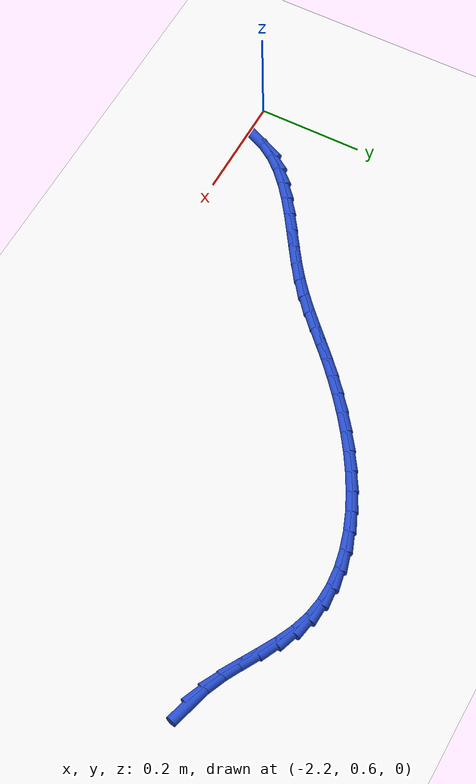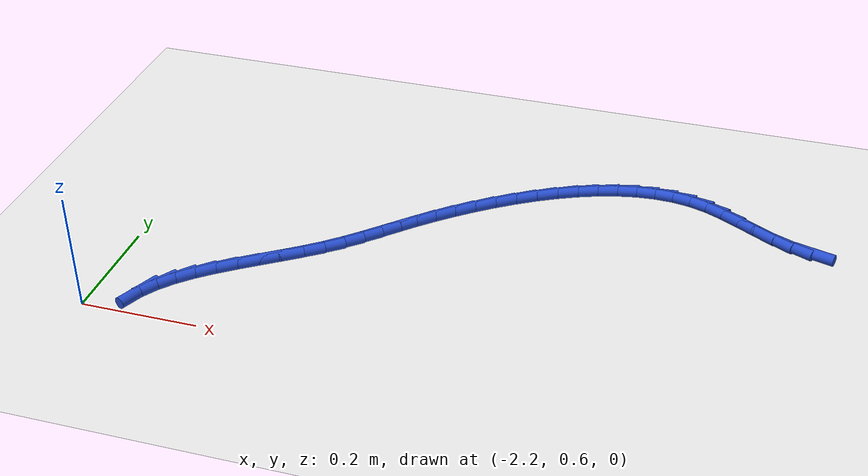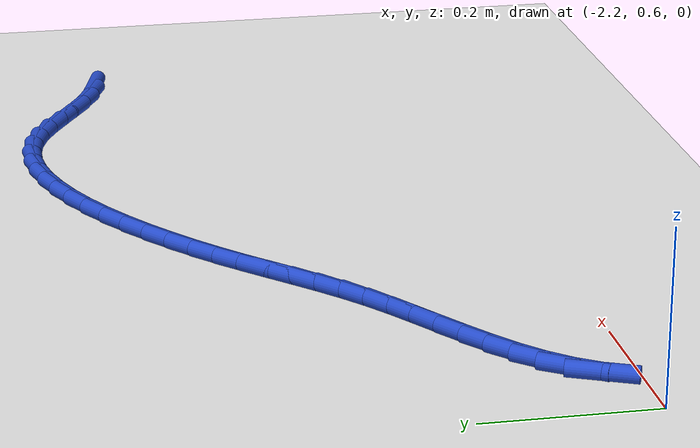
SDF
<sdf version="1.6">
 <world name="default">
  <model name="ground_plane">
   <static>1</static>
   <link name="link">
    <collision name="collision">
     <geometry><plane><normal>0 0 1</normal><size>100 100</size></plane></geometry>
     <surface><friction><ode><mu>100</mu><mu2>50</mu2></ode></friction></surface>
    </collision>
    <visual name="visual">
     <cast_shadows>0</cast_shadows>
     <geometry><plane><normal>0 0 1</normal><size>100 100</size></plane></geometry>
     <material>
      <script><uri>file://media/materials/scripts/gazebo.material</uri><name>Gazebo/WhiteGlow</name></script>
     </material>
    </visual>
   </link>
  </model>
  <model name="line">
   <link name="link_52">
    <pose>-1.0849230172846445 1.061334297275301 0.01 0 1.57 -0.2718660057260044</pose>
    <collision name="collision">
     <geometry><cylinder><radius>0.01</radius><length>0.08</length></cylinder></geometry>
    </collision>
    <visual name="visual">
     <material>
      <script><name>Gazebo/Blue</name><uri>file://media/materials/scripts/gazebo.material</uri></script>
     </material>
     <geometry><cylinder><radius>0.01</radius><length>0.08</length></cylinder></geometry>
    </visual>
   </link>
   <link name="link_53">
    <pose>-1.1193700111600657 1.0709370206111122 0.01 0 1.57 -0.4067246753438625</pose>
    <collision name="collision">
     <geometry><cylinder><radius>0.01</radius><length>0.08</length></cylinder></geometry>
    </collision>
    <visual name="visual">
     <material>
      <script><name>Gazebo/Blue</name><uri>file://media/materials/scripts/gazebo.material</uri></script>
     </material>
     <geometry><cylinder><radius>0.01</radius><length>0.08</length></cylinder></geometry>
    </visual>
   </link>
   <link name="link_54">
    <pose>-1.151906158742915 1.0849517279762726 0.01 0 1.57 -0.4921197814711319</pose>
    <collision name="collision">
     <geometry><cylinder><radius>0.01</radius><length>0.08</length></cylinder></geometry>
    </collision>
    <visual name="visual">
     <material>
      <script><name>Gazebo/Blue</name><uri>file://media/materials/scripts/gazebo.material</uri></script>
     </material>
     <geometry><cylinder><radius>0.01</radius><length>0.08</length></cylinder></geometry>
    </visual>
   </link>
   <link name="link_55">
    <pose>-1.18307979044663 1.1016643514291158 0.01 0 1.57 -0.5277498516289822</pose>
    <collision name="collision">
     <geometry><cylinder><radius>0.01</radius><length>0.08</length></cylinder></geometry>
    </collision>
    <visual name="visual">
     <material>
      <script><name>Gazebo/Blue</name><uri>file://media/materials/scripts/gazebo.material</uri></script>
     </material>
     <geometry><cylinder><radius>0.01</radius><length>0.08</length></cylinder></geometry>
    </visual>
   </link>
   <link name="link_56">
    <pose>-1.2134392366846507 1.119360823027975 0.01 0 1.57 -0.5133634655075486</pose>
    <collision name="collision">
     <geometry><cylinder><radius>0.01</radius><length>0.08</length></cylinder></geometry>
    </collision>
    <visual name="visual">
     <material>
      <script><name>Gazebo/Blue</name><uri>file://media/materials/scripts/gazebo.material</uri></script>
     </material>
     <geometry><cylinder><radius>0.01</radius><length>0.08</length></cylinder></geometry>
    </visual>
   </link>
   <link name="link_57">
    <pose>-1.2435328278704143 1.1363270748311838 0.01 0 1.57 -0.4459522872256851</pose>
    <collision name="collision">
     <geometry><cylinder><radius>0.01</radius><length>0.08</length></cylinder></geometry>
    </collision>
    <visual name="visual">
     <material>
      <script><name>Gazebo/Blue</name><uri>file://media/materials/scripts/gazebo.material</uri></script>
     </material>
     <geometry><cylinder><radius>0.01</radius><length>0.08</length></cylinder></geometry>
    </visual>
   </link>
   <link name="link_58">
    <pose>-1.2739088944173609 1.1508490388970756 0.01 0 1.57 -0.322100916913649</pose>
    <collision name="collision">
     <geometry><cylinder><radius>0.01</radius><length>0.08</length></cylinder></geometry>
    </collision>
    <visual name="visual">
     <material>
      <script><name>Gazebo/Blue</name><uri>file://media/materials/scripts/gazebo.material</uri></script>
     </material>
     <geometry><cylinder><radius>0.01</radius><length>0.08</length></cylinder></geometry>
    </visual>
   </link>
   <link name="link_59">
    <pose>-1.305099322435715 1.1612579918295405 0.01 0 1.57 -0.17322972552930815</pose>
    <collision name="collision">
     <geometry><cylinder><radius>0.01</radius><length>0.08</length></cylinder></geometry>
    </collision>
    <visual name="visual">
     <material>
      <script><name>Gazebo/Blue</name><uri>file://media/materials/scripts/gazebo.material</uri></script>
     </material>
     <geometry><cylinder><radius>0.01</radius><length>0.08</length></cylinder></geometry>
    </visual>
   </link>
   <link name="link_60">
    <pose>-1.3372724225972956 1.166887755783767 0.01 0 1.57 -0.035322412318220336</pose>
    <collision name="collision">
     <geometry><cylinder><radius>0.01</radius><length>0.08</length></cylinder></geometry>
    </collision>
    <visual name="visual">
     <material>
      <script><name>Gazebo/Blue</name><uri>file://media/materials/scripts/gazebo.material</uri></script>
     </material>
     <geometry><cylinder><radius>0.01</radius><length>0.08</length></cylinder></geometry>
    </visual>
   </link>
   <link name="link_61">
    <pose>-1.3702408840202904 1.1680527659291147 0.01 0 1.57 0.0875055713214895</pose>
    <collision name="collision">
     <geometry><cylinder><radius>0.01</radius><length>0.08</length></cylinder></geometry>
    </collision>
    <visual name="visual">
     <material>
      <script><name>Gazebo/Blue</name><uri>file://media/materials/scripts/gazebo.material</uri></script>
     </material>
     <geometry><cylinder><radius>0.01</radius><length>0.08</length></cylinder></geometry>
    </visual>
   </link>
   <link name="link_62">
    <pose>-1.40380254254063 1.1651084148002613 0.01 0 1.57 0.194782580031764</pose>
    <collision name="collision">
     <geometry><cylinder><radius>0.01</radius><length>0.08</length></cylinder></geometry>
    </collision>
    <visual name="visual">
     <material>
      <script><name>Gazebo/Blue</name><uri>file://media/materials/scripts/gazebo.material</uri></script>
     </material>
     <geometry><cylinder><radius>0.01</radius><length>0.08</length></cylinder></geometry>
    </visual>
   </link>
   <link name="link_63">
    <pose>-1.4377552339942437 1.1584100949318827 0.01 0 1.57 0.2875404967684009</pose>
    <collision name="collision">
     <geometry><cylinder><radius>0.01</radius><length>0.08</length></cylinder></geometry>
    </collision>
    <visual name="visual">
     <material>
      <script><name>Gazebo/Blue</name><uri>file://media/materials/scripts/gazebo.material</uri></script>
     </material>
     <geometry><cylinder><radius>0.01</radius><length>0.08</length></cylinder></geometry>
    </visual>
   </link>
   <link name="link_64">
    <pose>-1.4718967942170615 1.148313198858657 0.01 0 1.57 0.3675266486257163</pose>
    <collision name="collision">
     <geometry><cylinder><radius>0.01</radius><length>0.08</length></cylinder></geometry>
    </collision>
    <visual name="visual">
     <material>
      <script><name>Gazebo/Blue</name><uri>file://media/materials/scripts/gazebo.material</uri></script>
     </material>
     <geometry><cylinder><radius>0.01</radius><length>0.08</length></cylinder></geometry>
    </visual>
   </link>
   <link name="link_65">
    <pose>-1.506025059045013 1.1351731191152608 0.01 0 1.57 0.4366730466395532</pose>
    <collision name="collision">
     <geometry><cylinder><radius>0.01</radius><length>0.08</length></cylinder></geometry>
    </collision>
    <visual name="visual">
     <material>
      <script><name>Gazebo/Blue</name><uri>file://media/materials/scripts/gazebo.material</uri></script>
     </material>
     <geometry><cylinder><radius>0.01</radius><length>0.08</length></cylinder></geometry>
    </visual>
   </link>
   <link name="link_66">
    <pose>-1.5399378643140285 1.1193452482363706 0.01 0 1.57 0.4968161380558348</pose>
    <collision name="collision">
     <geometry><cylinder><radius>0.01</radius><length>0.08</length></cylinder></geometry>
    </collision>
    <visual name="visual">
     <material>
      <script><name>Gazebo/Blue</name><uri>file://media/materials/scripts/gazebo.material</uri></script>
     </material>
     <geometry><cylinder><radius>0.01</radius><length>0.08</length></cylinder></geometry>
    </visual>
   </link>
   <link name="link_67">
    <pose>-1.573433045860037 1.101184978756664 0.01 0 1.57 0.5495842767975659</pose>
    <collision name="collision">
     <geometry><cylinder><radius>0.01</radius><length>0.08</length></cylinder></geometry>
    </collision>
    <visual name="visual">
     <material>
      <script><name>Gazebo/Blue</name><uri>file://media/materials/scripts/gazebo.material</uri></script>
     </material>
     <geometry><cylinder><radius>0.01</radius><length>0.08</length></cylinder></geometry>
    </visual>
   </link>
   <link name="link_68">
    <pose>-1.6063084395189688 1.0810477032108177 0.01 0 1.57 0.5963772638823972</pose>
    <collision name="collision">
     <geometry><cylinder><radius>0.01</radius><length>0.08</length></cylinder></geometry>
    </collision>
    <visual name="visual">
     <material>
      <script><name>Gazebo/Blue</name><uri>file://media/materials/scripts/gazebo.material</uri></script>
     </material>
     <geometry><cylinder><radius>0.01</radius><length>0.08</length></cylinder></geometry>
    </visual>
   </link>
   <link name="link_69">
    <pose>-1.6383618811267544 1.0592888141335082 0.01 0 1.57 0.6383894890014451</pose>
    <collision name="collision">
     <geometry><cylinder><radius>0.01</radius><length>0.08</length></cylinder></geometry>
    </collision>
    <visual name="visual">
     <material>
      <script><name>Gazebo/Blue</name><uri>file://media/materials/scripts/gazebo.material</uri></script>
     </material>
     <geometry><cylinder><radius>0.01</radius><length>0.08</length></cylinder></geometry>
    </visual>
   </link>
   <link name="link_70">
    <pose>-1.6693912065193213 1.0362637040594127 0.01 0 1.57 0.676651033779097</pose>
    <collision name="collision">
     <geometry><cylinder><radius>0.01</radius><length>0.08</length></cylinder></geometry>
    </collision>
    <visual name="visual">
     <material>
      <script><name>Gazebo/Blue</name><uri>file://media/materials/scripts/gazebo.material</uri></script>
     </material>
     <geometry><cylinder><radius>0.01</radius><length>0.08</length></cylinder></geometry>
    </visual>
   </link>
   <link name="link_71">
    <pose>-1.6991942515326013 1.0123277655232086 0.01 0 1.57 0.7120756807734522</pose>
    <collision name="collision">
     <geometry><cylinder><radius>0.01</radius><length>0.08</length></cylinder></geometry>
    </collision>
    <visual name="visual">
     <material>
      <script><name>Gazebo/Blue</name><uri>file://media/materials/scripts/gazebo.material</uri></script>
     </material>
     <geometry><cylinder><radius>0.01</radius><length>0.08</length></cylinder></geometry>
    </visual>
   </link>
   <link name="link_72">
    <pose>-1.7275688520025239 0.9878363910595723 0.01 0 1.57 0.7453831184641909</pose>
    <collision name="collision">
     <geometry><cylinder><radius>0.01</radius><length>0.08</length></cylinder></geometry>
    </collision>
    <visual name="visual">
     <material>
      <script><name>Gazebo/Blue</name><uri>file://media/materials/scripts/gazebo.material</uri></script>
     </material>
     <geometry><cylinder><radius>0.01</radius><length>0.08</length></cylinder></geometry>
    </visual>
   </link>
   <link name="link_73">
    <pose>-1.7543216307839666 0.9631433197362219 0.01 0 1.57 0.7713417953977889</pose>
    <collision name="collision">
     <geometry><cylinder><radius>0.01</radius><length>0.08</length></cylinder></geometry>
    </collision>
    <visual name="visual">
     <material>
      <script><name>Gazebo/Blue</name><uri>file://media/materials/scripts/gazebo.material</uri></script>
     </material>
     <geometry><cylinder><radius>0.01</radius><length>0.08</length></cylinder></geometry>
    </visual>
   </link>
   <link name="link_74">
    <pose>-1.779635232296701 0.9385315340608751 0.01 0 1.57 0.7808372961791213</pose>
    <collision name="collision">
     <geometry><cylinder><radius>0.01</radius><length>0.08</length></cylinder></geometry>
    </collision>
    <visual name="visual">
     <material>
      <script><name>Gazebo/Blue</name><uri>file://media/materials/scripts/gazebo.material</uri></script>
     </material>
     <geometry><cylinder><radius>0.01</radius><length>0.08</length></cylinder></geometry>
    </visual>
   </link>
   <link name="link_75">
    <pose>-1.8042016715444495 0.9141881674898916 0.01 0 1.57 0.7719212531692389</pose>
    <collision name="collision">
     <geometry><cylinder><radius>0.01</radius><length>0.08</length></cylinder></geometry>
    </collision>
    <visual name="visual">
     <material>
      <script><name>Gazebo/Blue</name><uri>file://media/materials/scripts/gazebo.material</uri></script>
     </material>
     <geometry><cylinder><radius>0.01</radius><length>0.08</length></cylinder></geometry>
    </visual>
   </link>
   <link name="link_76">
    <pose>-1.8287491929784072 0.8902935361284101 0.01 0 1.57 0.744383082709051</pose>
    <collision name="collision">
     <geometry><cylinder><radius>0.01</radius><length>0.08</length></cylinder></geometry>
    </collision>
    <visual name="visual">
     <material>
      <script><name>Gazebo/Blue</name><uri>file://media/materials/scripts/gazebo.material</uri></script>
     </material>
     <geometry><cylinder><radius>0.01</radius><length>0.08</length></cylinder></geometry>
    </visual>
   </link>
   <link name="link_77">
    <pose>-1.8540060410497685 0.8670279560815712 0.01 0 1.57 0.6993820109860589</pose>
    <collision name="collision">
     <geometry><cylinder><radius>0.01</radius><length>0.08</length></cylinder></geometry>
    </collision>
    <visual name="visual">
     <material>
      <script><name>Gazebo/Blue</name><uri>file://media/materials/scripts/gazebo.material</uri></script>
     </material>
     <geometry><cylinder><radius>0.01</radius><length>0.08</length></cylinder></geometry>
    </visual>
   </link>
   <link name="link_78">
    <pose>-1.8807004597273815 0.8445717432866604 0.01 0 1.57 0.6459647797703112</pose>
    <collision name="collision">
     <geometry><cylinder><radius>0.01</radius><length>0.08</length></cylinder></geometry>
    </collision>
    <visual name="visual">
     <material>
      <script><name>Gazebo/Blue</name><uri>file://media/materials/scripts/gazebo.material</uri></script>
     </material>
     <geometry><cylinder><radius>0.01</radius><length>0.08</length></cylinder></geometry>
    </visual>
   </link>
   <link name="link_79">
    <pose>-1.9092975464011002 0.8230136401910809 0.01 0 1.57 0.6098002822050382</pose>
    <collision name="collision">
     <geometry><cylinder><radius>0.01</radius><length>0.08</length></cylinder></geometry>
    </collision>
    <visual name="visual">
     <material>
      <script><name>Gazebo/Blue</name><uri>file://media/materials/scripts/gazebo.material</uri></script>
     </material>
     <geometry><cylinder><radius>0.01</radius><length>0.08</length></cylinder></geometry>
    </visual>
   </link>
   <link name="link_80">
    <pose>-1.9392482113033065 0.8020894579681237 0.01 0 1.57 0.5947539697306149</pose>
    <collision name="collision">
     <geometry><cylinder><radius>0.01</radius><length>0.08</length></cylinder></geometry>
    </collision>
    <visual name="visual">
     <material>
      <script><name>Gazebo/Blue</name><uri>file://media/materials/scripts/gazebo.material</uri></script>
     </material>
     <geometry><cylinder><radius>0.01</radius><length>0.08</length></cylinder></geometry>
    </visual>
   </link>
   <link name="link_81">
    <pose>-1.96975906994291 0.7814499946380539 0.01 0 1.57 0.5997722727494126</pose>
    <collision name="collision">
     <geometry><cylinder><radius>0.01</radius><length>0.08</length></cylinder></geometry>
    </collision>
    <visual name="visual">
     <material>
      <script><name>Gazebo/Blue</name><uri>file://media/materials/scripts/gazebo.material</uri></script>
     </material>
     <geometry><cylinder><radius>0.01</radius><length>0.08</length></cylinder></geometry>
    </visual>
   </link>
   <link name="link_82">
    <pose>-2.000036737828821 0.760746048221136 0.01 0 1.57 0.6253017335344195</pose>
    <collision name="collision">
     <geometry><cylinder><radius>0.01</radius><length>0.08</length></cylinder></geometry>
    </collision>
    <visual name="visual">
     <material>
      <script><name>Gazebo/Blue</name><uri>file://media/materials/scripts/gazebo.material</uri></script>
     </material>
     <geometry><cylinder><radius>0.01</radius><length>0.08</length></cylinder></geometry>
    </visual>
   </link>
   <link name="link_83">
    <pose>-2.029287830469948 0.7396284167376357 0.01 0 1.57 0.6733080510367261</pose>
    <collision name="collision">
     <geometry><cylinder><radius>0.01</radius><length>0.08</length></cylinder></geometry>
    </collision>
    <visual name="visual">
     <material>
      <script><name>Gazebo/Blue</name><uri>file://media/materials/scripts/gazebo.material</uri></script>
     </material>
     <geometry><cylinder><radius>0.01</radius><length>0.08</length></cylinder></geometry>
    </visual>
   </link>
   <link name="link_84">
    <pose>-2.056718963375199 0.7177478982078175 0.01 0 1.57 0.7472412897648841</pose>
    <collision name="collision">
     <geometry><cylinder><radius>0.01</radius><length>0.08</length></cylinder></geometry>
    </collision>
    <visual name="visual">
     <material>
      <script><name>Gazebo/Blue</name><uri>file://media/materials/scripts/gazebo.material</uri></script>
     </material>
     <geometry><cylinder><radius>0.01</radius><length>0.08</length></cylinder></geometry>
    </visual>
   </link>
   <link name="link_85">
    <pose>-2.081536752053486 0.6947552906519462 0.01 0 1.57 0.8516445124811312</pose>
    <collision name="collision">
     <geometry><cylinder><radius>0.01</radius><length>0.08</length></cylinder></geometry>
    </collision>
    <visual name="visual">
     <material>
      <script><name>Gazebo/Blue</name><uri>file://media/materials/scripts/gazebo.material</uri></script>
     </material>
     <geometry><cylinder><radius>0.01</radius><length>0.08</length></cylinder></geometry>
    </visual>
   </link>
   <link name="link_86">
    <pose>-2.1029478120137157 0.6703013920902869 0.01 0 1.57 0.990703466601286</pose>
    <collision name="collision">
     <geometry><cylinder><radius>0.01</radius><length>0.08</length></cylinder></geometry>
    </collision>
    <visual name="visual">
     <material>
      <script><name>Gazebo/Blue</name><uri>file://media/materials/scripts/gazebo.material</uri></script>
     </material>
     <geometry><cylinder><radius>0.01</radius><length>0.08</length></cylinder></geometry>
    </visual>
   </link>
   <link name="link_87">
    <pose>-2.120158868507794 0.6440370466235023 0.01 0 1.57 1.1550052985267931</pose>
    <collision name="collision">
     <geometry><cylinder><radius>0.01</radius><length>0.08</length></cylinder></geometry>
    </collision>
    <visual name="visual">
     <material>
      <script><name>Gazebo/Blue</name><uri>file://media/materials/scripts/gazebo.material</uri></script>
     </material>
     <geometry><cylinder><radius>0.01</radius><length>0.08</length></cylinder></geometry>
    </visual>
   </link>
  </model>
 </world>
</sdf>
